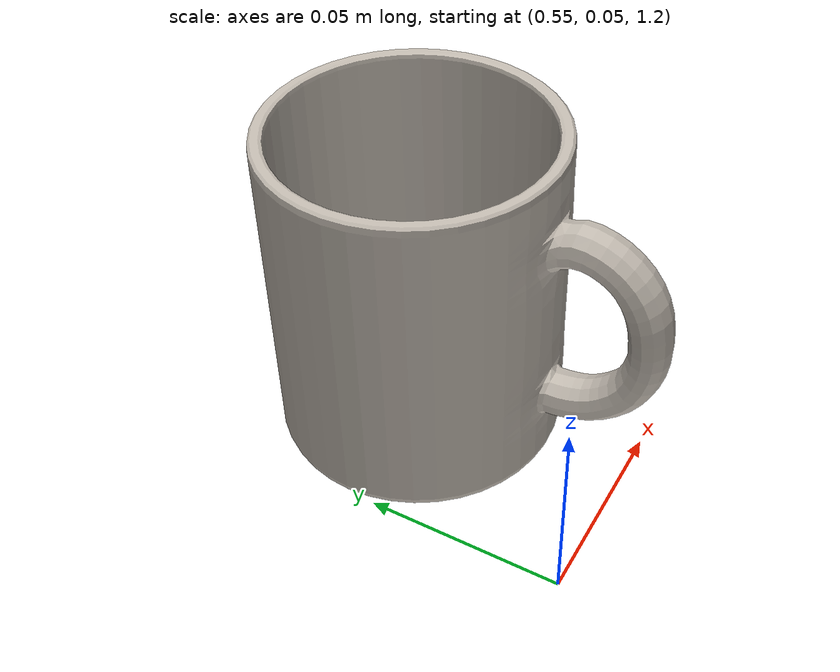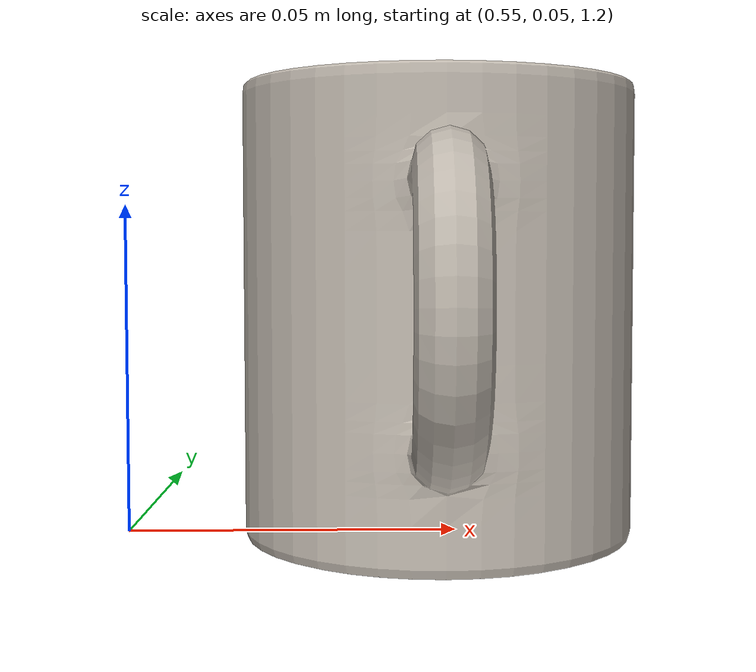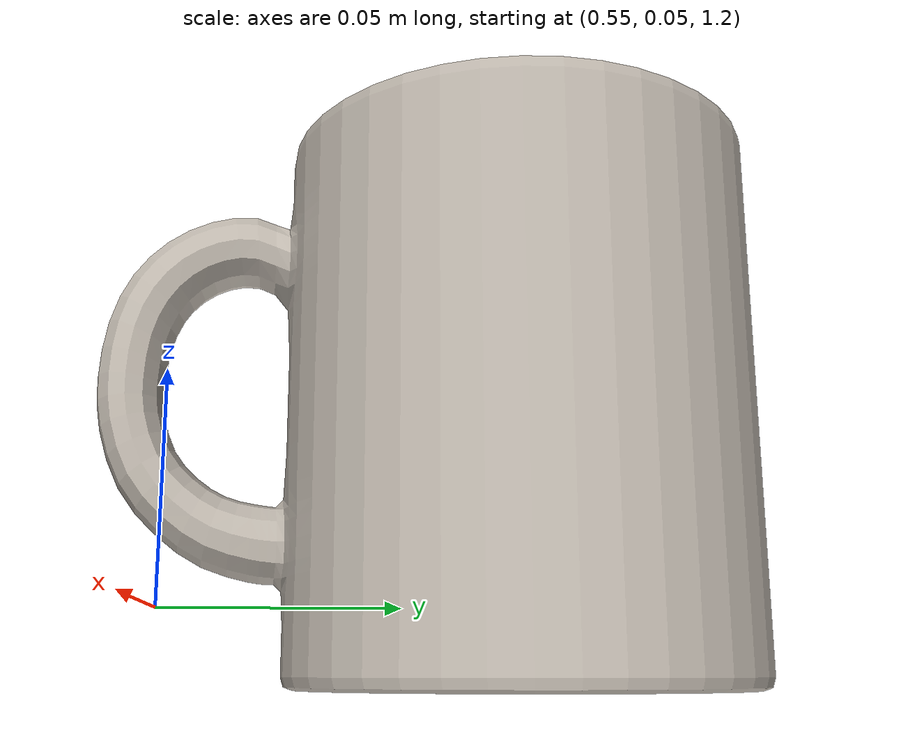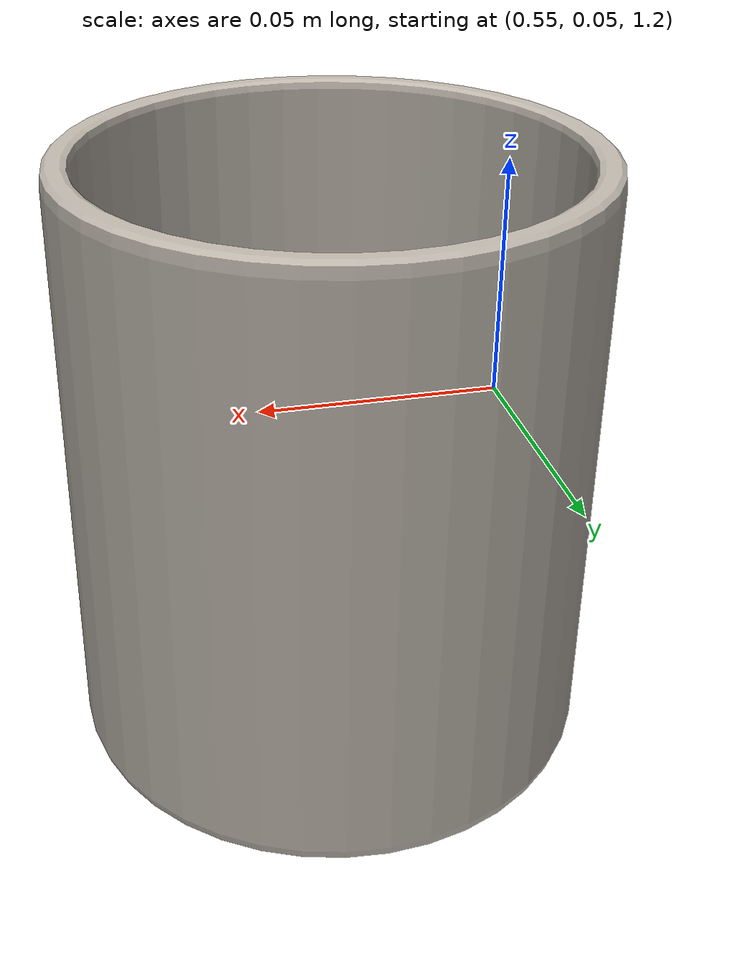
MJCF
<mujoco model="mug_57">
  <asset>
    <mesh file="../objects/bigym/mug_13/visual/model_normalized_0.obj" name="model_normalized_0_vis" scale="0.11 0.11 0.11" refquat="0.7071067811865472 0.0 0.0 0.7071067811865476"/>
    <mesh file="../objects/bigym/mug_13/collision/model_normalized_collision_22.obj" name="model_normalized_collision_22._coll" scale="0.11 0.11 0.11" refquat="0.7071067811865472 0.0 0.0 0.7071067811865476"/>
    <mesh file="../objects/bigym/mug_13/collision/model_normalized_collision_23.obj" name="model_normalized_collision_23._coll" scale="0.11 0.11 0.11" refquat="0.7071067811865472 0.0 0.0 0.7071067811865476"/>
    <mesh file="../objects/bigym/mug_13/collision/model_normalized_collision_21.obj" name="model_normalized_collision_21._coll" scale="0.11 0.11 0.11" refquat="0.7071067811865472 0.0 0.0 0.7071067811865476"/>
    <mesh file="../objects/bigym/mug_13/collision/model_normalized_collision_20.obj" name="model_normalized_collision_20._coll" scale="0.11 0.11 0.11" refquat="0.7071067811865472 0.0 0.0 0.7071067811865476"/>
    <mesh file="../objects/bigym/mug_13/collision/model_normalized_collision_24.obj" name="model_normalized_collision_24._coll" scale="0.11 0.11 0.11" refquat="0.7071067811865472 0.0 0.0 0.7071067811865476"/>
    <mesh file="../objects/bigym/mug_13/collision/model_normalized_collision_30.obj" name="model_normalized_collision_30._coll" scale="0.11 0.11 0.11" refquat="0.7071067811865472 0.0 0.0 0.7071067811865476"/>
    <mesh file="../objects/bigym/mug_13/collision/model_normalized_collision_18.obj" name="model_normalized_collision_18._coll" scale="0.11 0.11 0.11" refquat="0.7071067811865472 0.0 0.0 0.7071067811865476"/>
    <mesh file="../objects/bigym/mug_13/collision/model_normalized_collision_19.obj" name="model_normalized_collision_19._coll" scale="0.11 0.11 0.11" refquat="0.7071067811865472 0.0 0.0 0.7071067811865476"/>
    <mesh file="../objects/bigym/mug_13/collision/model_normalized_collision_31.obj" name="model_normalized_collision_31._coll" scale="0.11 0.11 0.11" refquat="0.7071067811865472 0.0 0.0 0.7071067811865476"/>
    <mesh file="../objects/bigym/mug_13/collision/model_normalized_collision_25.obj" name="model_normalized_collision_25._coll" scale="0.11 0.11 0.11" refquat="0.7071067811865472 0.0 0.0 0.7071067811865476"/>
    <mesh file="../objects/bigym/mug_13/collision/model_normalized_collision_27.obj" name="model_normalized_collision_27._coll" scale="0.11 0.11 0.11" refquat="0.7071067811865472 0.0 0.0 0.7071067811865476"/>
    <mesh file="../objects/bigym/mug_13/collision/model_normalized_collision_26.obj" name="model_normalized_collision_26._coll" scale="0.11 0.11 0.11" refquat="0.7071067811865472 0.0 0.0 0.7071067811865476"/>
    <mesh file="../objects/bigym/mug_13/collision/model_normalized_collision_9.obj" name="model_normalized_collision_9._coll" scale="0.11 0.11 0.11" refquat="0.7071067811865472 0.0 0.0 0.7071067811865476"/>
    <mesh file="../objects/bigym/mug_13/collision/model_normalized_collision_8.obj" name="model_normalized_collision_8._coll" scale="0.11 0.11 0.11" refquat="0.7071067811865472 0.0 0.0 0.7071067811865476"/>
    <mesh file="../objects/bigym/mug_13/collision/model_normalized_collision_6.obj" name="model_normalized_collision_6._coll" scale="0.11 0.11 0.11" refquat="0.7071067811865472 0.0 0.0 0.7071067811865476"/>
    <mesh file="../objects/bigym/mug_13/collision/model_normalized_collision_7.obj" name="model_normalized_collision_7._coll" scale="0.11 0.11 0.11" refquat="0.7071067811865472 0.0 0.0 0.7071067811865476"/>
    <mesh file="../objects/bigym/mug_13/collision/model_normalized_collision_5.obj" name="model_normalized_collision_5._coll" scale="0.11 0.11 0.11" refquat="0.7071067811865472 0.0 0.0 0.7071067811865476"/>
    <mesh file="../objects/bigym/mug_13/collision/model_normalized_collision_4.obj" name="model_normalized_collision_4._coll" scale="0.11 0.11 0.11" refquat="0.7071067811865472 0.0 0.0 0.7071067811865476"/>
    <mesh file="../objects/bigym/mug_13/collision/model_normalized_collision_0.obj" name="model_normalized_collision_0._coll" scale="0.11 0.11 0.11" refquat="0.7071067811865472 0.0 0.0 0.7071067811865476"/>
    <mesh file="../objects/bigym/mug_13/collision/model_normalized_collision_1.obj" name="model_normalized_collision_1._coll" scale="0.11 0.11 0.11" refquat="0.7071067811865472 0.0 0.0 0.7071067811865476"/>
    <mesh file="../objects/bigym/mug_13/collision/model_normalized_collision_3.obj" name="model_normalized_collision_3._coll" scale="0.11 0.11 0.11" refquat="0.7071067811865472 0.0 0.0 0.7071067811865476"/>
    <mesh file="../objects/bigym/mug_13/collision/model_normalized_collision_2.obj" name="model_normalized_collision_2._coll" scale="0.11 0.11 0.11" refquat="0.7071067811865472 0.0 0.0 0.7071067811865476"/>
    <mesh file="../objects/bigym/mug_13/collision/model_normalized_collision_17.obj" name="model_normalized_collision_17._coll" scale="0.11 0.11 0.11" refquat="0.7071067811865472 0.0 0.0 0.7071067811865476"/>
    <mesh file="../objects/bigym/mug_13/collision/model_normalized_collision_16.obj" name="model_normalized_collision_16._coll" scale="0.11 0.11 0.11" refquat="0.7071067811865472 0.0 0.0 0.7071067811865476"/>
    <mesh file="../objects/bigym/mug_13/collision/model_normalized_collision_28.obj" name="model_normalized_collision_28._coll" scale="0.11 0.11 0.11" refquat="0.7071067811865472 0.0 0.0 0.7071067811865476"/>
    <mesh file="../objects/bigym/mug_13/collision/model_normalized_collision_14.obj" name="model_normalized_collision_14._coll" scale="0.11 0.11 0.11" refquat="0.7071067811865472 0.0 0.0 0.7071067811865476"/>
    <mesh file="../objects/bigym/mug_13/collision/model_normalized_collision_15.obj" name="model_normalized_collision_15._coll" scale="0.11 0.11 0.11" refquat="0.7071067811865472 0.0 0.0 0.7071067811865476"/>
    <mesh file="../objects/bigym/mug_13/collision/model_normalized_collision_29.obj" name="model_normalized_collision_29._coll" scale="0.11 0.11 0.11" refquat="0.7071067811865472 0.0 0.0 0.7071067811865476"/>
    <mesh file="../objects/bigym/mug_13/collision/model_normalized_collision_11.obj" name="model_normalized_collision_11._coll" scale="0.11 0.11 0.11" refquat="0.7071067811865472 0.0 0.0 0.7071067811865476"/>
    <mesh file="../objects/bigym/mug_13/collision/model_normalized_collision_10.obj" name="model_normalized_collision_10._coll" scale="0.11 0.11 0.11" refquat="0.7071067811865472 0.0 0.0 0.7071067811865476"/>
    <mesh file="../objects/bigym/mug_13/collision/model_normalized_collision_12.obj" name="model_normalized_collision_12._coll" scale="0.11 0.11 0.11" refquat="0.7071067811865472 0.0 0.0 0.7071067811865476"/>
    <mesh file="../objects/bigym/mug_13/collision/model_normalized_collision_13.obj" name="model_normalized_collision_13._coll" scale="0.11 0.11 0.11" refquat="0.7071067811865472 0.0 0.0 0.7071067811865476"/>
    <texture type="2d" name="mug_13_image0" file="../objects/bigym/mug_13/visual/image0.png"/>
    <material name="mugMat" texture="mug_13_image0" specular="0.5" shininess="0.25"/>
  </asset>
  <worldbody>
    <body pos="0.6 0.1 1.23">
      <freejoint/>
      <body name="mug_13_object">
        <geom solimp="0.998 0.998 0.001" solref="0.001 1" density="100" friction="0.95 0.3 0.1" type="mesh" mesh="model_normalized_0_vis" conaffinity="0" contype="0" group="1" material="mugMat"/>
        <geom solimp="0.998 0.998 0.001" solref="0.001 1" density="100" friction="0.95 0.3 0.1" type="mesh" mesh="model_normalized_collision_22._coll" group="0" rgba="0.8 0.8 0.8 0.0"/>
        <geom solimp="0.998 0.998 0.001" solref="0.001 1" density="100" friction="0.95 0.3 0.1" type="mesh" mesh="model_normalized_collision_23._coll" group="0" rgba="0.8 0.8 0.8 0.0"/>
        <geom solimp="0.998 0.998 0.001" solref="0.001 1" density="100" friction="0.95 0.3 0.1" type="mesh" mesh="model_normalized_collision_21._coll" group="0" rgba="0.8 0.8 0.8 0.0"/>
        <geom solimp="0.998 0.998 0.001" solref="0.001 1" density="100" friction="0.95 0.3 0.1" type="mesh" mesh="model_normalized_collision_20._coll" group="0" rgba="0.8 0.8 0.8 0.0"/>
        <geom solimp="0.998 0.998 0.001" solref="0.001 1" density="100" friction="0.95 0.3 0.1" type="mesh" mesh="model_normalized_collision_24._coll" group="0" rgba="0.8 0.8 0.8 0.0"/>
        <geom solimp="0.998 0.998 0.001" solref="0.001 1" density="100" friction="0.95 0.3 0.1" type="mesh" mesh="model_normalized_collision_30._coll" group="0" rgba="0.8 0.8 0.8 0.0"/>
        <geom solimp="0.998 0.998 0.001" solref="0.001 1" density="100" friction="0.95 0.3 0.1" type="mesh" mesh="model_normalized_collision_18._coll" group="0" rgba="0.8 0.8 0.8 0.0"/>
        <geom solimp="0.998 0.998 0.001" solref="0.001 1" density="100" friction="0.95 0.3 0.1" type="mesh" mesh="model_normalized_collision_19._coll" group="0" rgba="0.8 0.8 0.8 0.0"/>
        <geom solimp="0.998 0.998 0.001" solref="0.001 1" density="100" friction="0.95 0.3 0.1" type="mesh" mesh="model_normalized_collision_31._coll" group="0" rgba="0.8 0.8 0.8 0.0"/>
        <geom solimp="0.998 0.998 0.001" solref="0.001 1" density="100" friction="0.95 0.3 0.1" type="mesh" mesh="model_normalized_collision_25._coll" group="0" rgba="0.8 0.8 0.8 0.0"/>
        <geom solimp="0.998 0.998 0.001" solref="0.001 1" density="100" friction="0.95 0.3 0.1" type="mesh" mesh="model_normalized_collision_27._coll" group="0" rgba="0.8 0.8 0.8 0.0"/>
        <geom solimp="0.998 0.998 0.001" solref="0.001 1" density="100" friction="0.95 0.3 0.1" type="mesh" mesh="model_normalized_collision_26._coll" group="0" rgba="0.8 0.8 0.8 0.0"/>
        <geom solimp="0.998 0.998 0.001" solref="0.001 1" density="100" friction="0.95 0.3 0.1" type="mesh" mesh="model_normalized_collision_9._coll" group="0" rgba="0.8 0.8 0.8 0.0"/>
        <geom solimp="0.998 0.998 0.001" solref="0.001 1" density="100" friction="0.95 0.3 0.1" type="mesh" mesh="model_normalized_collision_8._coll" group="0" rgba="0.8 0.8 0.8 0.0"/>
        <geom solimp="0.998 0.998 0.001" solref="0.001 1" density="100" friction="0.95 0.3 0.1" type="mesh" mesh="model_normalized_collision_6._coll" group="0" rgba="0.8 0.8 0.8 0.0"/>
        <geom solimp="0.998 0.998 0.001" solref="0.001 1" density="100" friction="0.95 0.3 0.1" type="mesh" mesh="model_normalized_collision_7._coll" group="0" rgba="0.8 0.8 0.8 0.0"/>
        <geom solimp="0.998 0.998 0.001" solref="0.001 1" density="100" friction="0.95 0.3 0.1" type="mesh" mesh="model_normalized_collision_5._coll" group="0" rgba="0.8 0.8 0.8 0.0"/>
        <geom solimp="0.998 0.998 0.001" solref="0.001 1" density="100" friction="0.95 0.3 0.1" type="mesh" mesh="model_normalized_collision_4._coll" group="0" rgba="0.8 0.8 0.8 0.0"/>
        <geom solimp="0.998 0.998 0.001" solref="0.001 1" density="100" friction="0.95 0.3 0.1" type="mesh" mesh="model_normalized_collision_0._coll" group="0" rgba="0.8 0.8 0.8 0.0"/>
        <geom solimp="0.998 0.998 0.001" solref="0.001 1" density="100" friction="0.95 0.3 0.1" type="mesh" mesh="model_normalized_collision_1._coll" group="0" rgba="0.8 0.8 0.8 0.0"/>
        <geom solimp="0.998 0.998 0.001" solref="0.001 1" density="100" friction="0.95 0.3 0.1" type="mesh" mesh="model_normalized_collision_3._coll" group="0" rgba="0.8 0.8 0.8 0.0"/>
        <geom solimp="0.998 0.998 0.001" solref="0.001 1" density="100" friction="0.95 0.3 0.1" type="mesh" mesh="model_normalized_collision_2._coll" group="0" rgba="0.8 0.8 0.8 0.0"/>
        <geom solimp="0.998 0.998 0.001" solref="0.001 1" density="100" friction="0.95 0.3 0.1" type="mesh" mesh="model_normalized_collision_17._coll" group="0" rgba="0.8 0.8 0.8 0.0"/>
        <geom solimp="0.998 0.998 0.001" solref="0.001 1" density="100" friction="0.95 0.3 0.1" type="mesh" mesh="model_normalized_collision_16._coll" group="0" rgba="0.8 0.8 0.8 0.0"/>
        <geom solimp="0.998 0.998 0.001" solref="0.001 1" density="100" friction="0.95 0.3 0.1" type="mesh" mesh="model_normalized_collision_28._coll" group="0" rgba="0.8 0.8 0.8 0.0"/>
        <geom solimp="0.998 0.998 0.001" solref="0.001 1" density="100" friction="0.95 0.3 0.1" type="mesh" mesh="model_normalized_collision_14._coll" group="0" rgba="0.8 0.8 0.8 0.0"/>
        <geom solimp="0.998 0.998 0.001" solref="0.001 1" density="100" friction="0.95 0.3 0.1" type="mesh" mesh="model_normalized_collision_15._coll" group="0" rgba="0.8 0.8 0.8 0.0"/>
        <geom solimp="0.998 0.998 0.001" solref="0.001 1" density="100" friction="0.95 0.3 0.1" type="mesh" mesh="model_normalized_collision_29._coll" group="0" rgba="0.8 0.8 0.8 0.0"/>
        <geom solimp="0.998 0.998 0.001" solref="0.001 1" density="100" friction="0.95 0.3 0.1" type="mesh" mesh="model_normalized_collision_11._coll" group="0" rgba="0.8 0.8 0.8 0.0"/>
        <geom solimp="0.998 0.998 0.001" solref="0.001 1" density="100" friction="0.95 0.3 0.1" type="mesh" mesh="model_normalized_collision_10._coll" group="0" rgba="0.8 0.8 0.8 0.0"/>
        <geom solimp="0.998 0.998 0.001" solref="0.001 1" density="100" friction="0.95 0.3 0.1" type="mesh" mesh="model_normalized_collision_12._coll" group="0" rgba="0.8 0.8 0.8 0.0"/>
        <geom solimp="0.998 0.998 0.001" solref="0.001 1" density="100" friction="0.95 0.3 0.1" type="mesh" mesh="model_normalized_collision_13._coll" group="0" rgba="0.8 0.8 0.8 0.0"/>
      </body>
      <site rgba="0 0 0 0" size="0.005" pos="0.00036644519999999987 0.0004381806000000024 -0.04563746" name="bottom_site"/>
      <site rgba="0 0 0 0" size="0.005" pos="0.00036644519999999987 0.0004381806000000024 0.045637457799999996" name="top_site"/>
      <site rgba="0 0 0 0" size="0.005" pos="0.03893925310000001 0.05488576060000001 -1.0999999994210087e-09" name="horizontal_radius_site"/>
    </body>
  </worldbody>
</mujoco>
